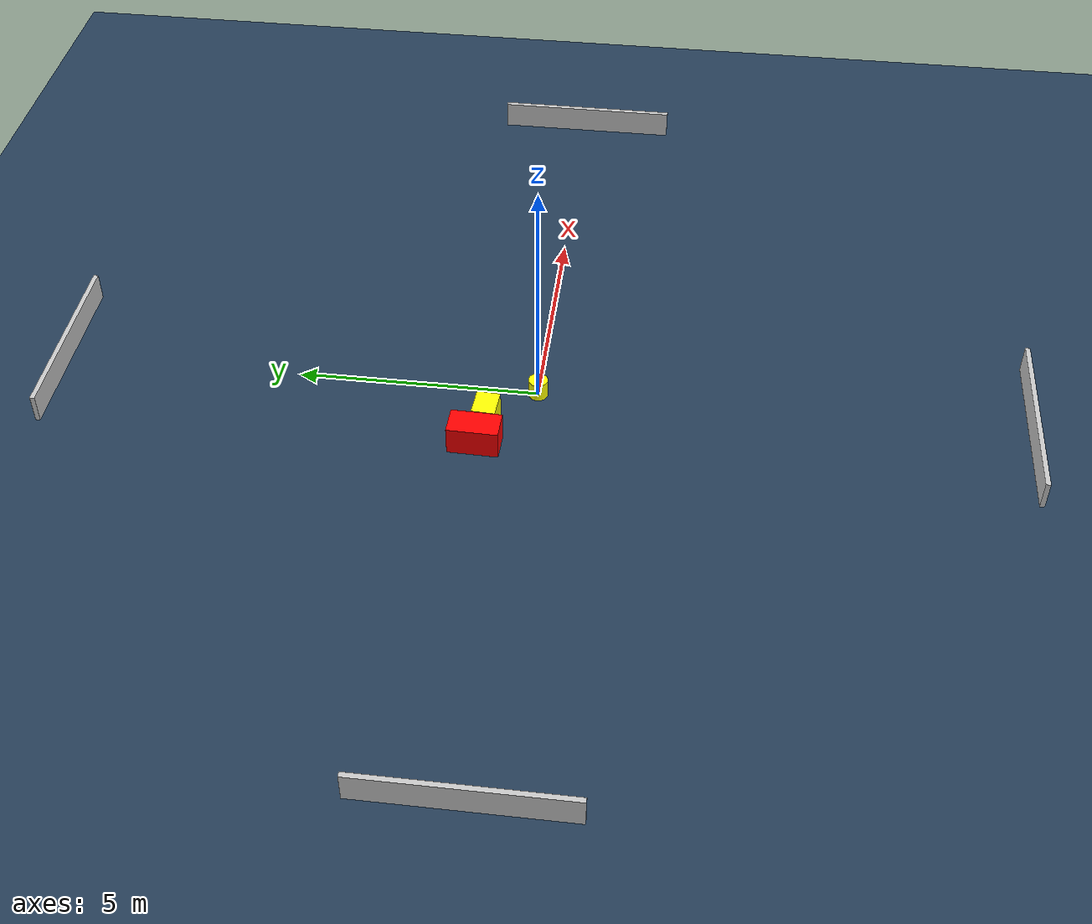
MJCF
<?xml version="1.0" ?>
<mujoco model="generated_environment">
  <option timestep="0.01" integrator="RK4" cone="elliptic"/>
  <default>
    <geom density="1"/>
  </default>
  <asset>
    <texture builtin="gradient" height="3072" name="skybox" rgb1="0.3 0.5 0.7" rgb2="0 0 0" type="skybox" width="512"/>
    <texture builtin="checker" height="300" name="groundplane" rgb1="0.2 0.3 0.4" rgb2="0.1 0.2 0.3" type="2d" width="300"/>
    <material name="groundplane" reflectance="0.2" texrepeat="5 5" texture="groundplane"/>
  </asset>
  <worldbody>
    <light dir="0 0 -1" directional="true" pos="0 0 1.5"/>
    <geom condim="3" friction="0.5 0.005 0.001" material="groundplane" name="floor" pos="0 0 0" size="0 0 0.05" type="plane"/>
    <body name="walls">
      <geom name="wall_1" condim="4" pos="-10.0 0.0 0.3" rgba="0.800000011920929 0.800000011920929 0.800000011920929 1.0" size="0.05 2.0 0.3" type="box"/>
      <geom name="wall_2" condim="4" pos="10.0 0.0 0.3" rgba="0.800000011920929 0.800000011920929 0.800000011920929 1.0" size="0.05 2.0 0.3" type="box"/>
      <geom name="wall_3" condim="4" pos="0.0 -10.0 0.3" rgba="0.800000011920929 0.800000011920929 0.800000011920929 1.0" size="2.0 0.05 0.3" type="box"/>
      <geom name="wall_4" condim="4" pos="0.0 10.0 0.3" rgba="0.800000011920929 0.800000011920929 0.800000011920929 1.0" size="2.0 0.05 0.3" type="box"/>
    </body>
    <body name="robot">
      <joint name="joint_x" type="slide" pos="0 0 0" axis="1 0 0"/>
      <joint name="joint_y" type="slide" pos="0 0 0" axis="0 1 0"/>
      <geom name="robot" type="cylinder" pos="0.0 0.0 0.2" size="0.2 0.2 0.0" mass="5.0" friction="1.0 0.005 0.0001" condim="4" rgba="1.0 1.0 0.0 1.0"/>
    </body>
    <body name="obstacle_1_movable">
      <geom name="obstacle_1_movable" condim="4" pos="-1.0163805463741227 0.9344435959275906 0.3" euler="0 0 266.6344539676191" friction="0.0 0.005 0.001" rgba="1.0 1.0 0.0 1.0" size="0.24111176862958233 0.2997285757540154 0.3" type="box" mass="0.1"/>
      <joint type="free"/>
    </body>
    <body name="obstacle_2_static">
      <geom name="obstacle_2_static" condim="4" pos="-1.6234089550228532 1.0786205053624787 0.3" euler="0 0 358.54653238719294" friction="0.0 0.005 0.001" rgba="1.0 0.0 0.0 1.0" size="0.2974604136447993 0.5206183269399317 0.3" type="box"/>
    </body>
  </worldbody>
  <actuator>
    <motor name="actuator_x" joint="joint_x" gear="1" ctrlrange="-1 1"/>
    <motor name="actuator_y" joint="joint_y" gear="1" ctrlrange="-1 1"/>
  </actuator>
</mujoco>
